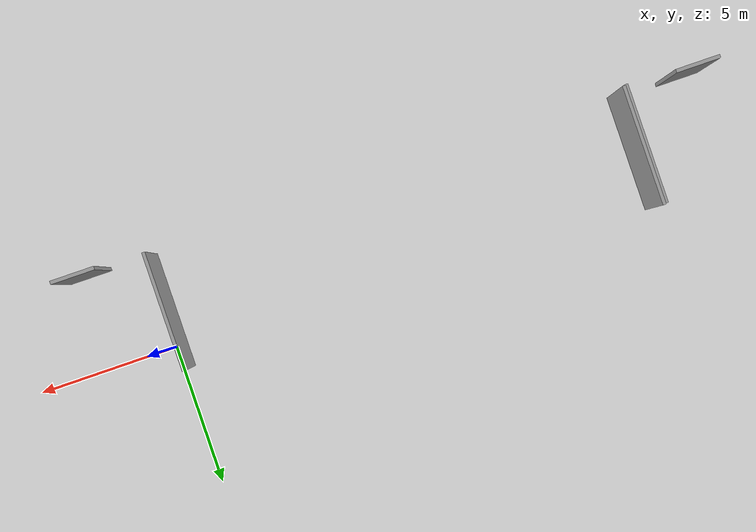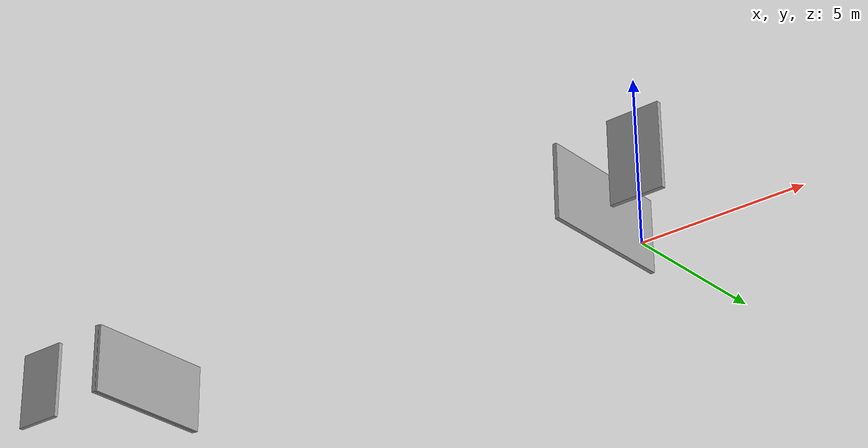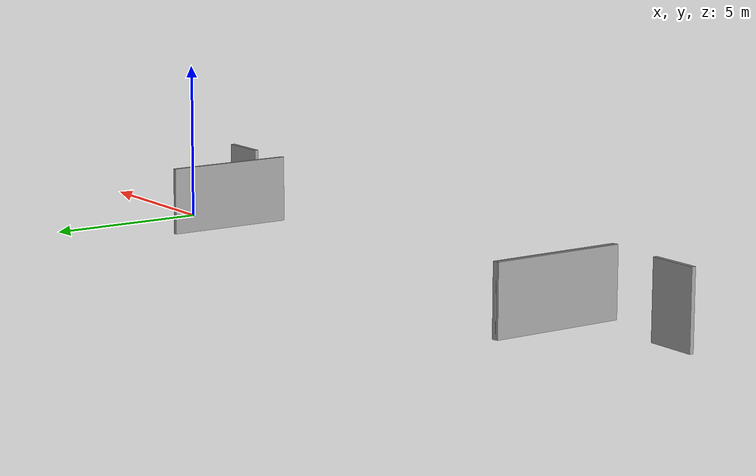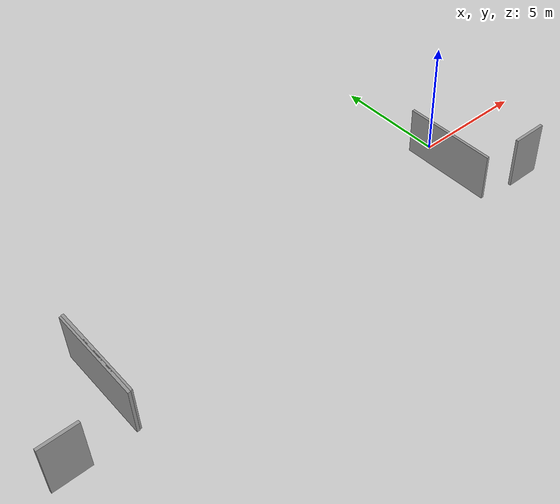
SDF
<?xml version='1.0'?>
<sdf version='1.7'>
  <model name='test_wall'>
    <link name='link'>
      <inertial>
        <mass>1.10406</mass>
        <inertia>
          <ixx>2.08016</ixx>
          <ixy>0</ixy>
          <ixz>0</ixz>
          <iyy>0.437792</iyy>
          <iyz>0</iyz>
          <izz>1.64501</izz>
        </inertia>
        <pose>0 0 0 0 -0 0</pose>
      </inertial>
      <self_collide>0</self_collide>
      <enable_wind>0</enable_wind>
      <kinematic>0</kinematic>
      <pose>-0.273242 -1.25956 0.601296 0 -0 0</pose>
      <visual name='visual'>
        <geometry>
          <box>
            <size>0.119706 4.22673 2.17808</size>
          </box>
        </geometry>
        <material>
          <script>
            <name>Gazebo/Grey</name>
            <uri>file://media/materials/scripts/gazebo.material</uri>
          </script>
          <shader type='pixel'/>
        </material>
        <pose>0 0 0 0 -0 0</pose>
        <transparency>0</transparency>
        <cast_shadows>1</cast_shadows>
      </visual>
      <collision name='collision'>
        <laser_retro>0</laser_retro>
        <max_contacts>10</max_contacts>
        <pose>0 0 0 0 -0 0</pose>
        <geometry>
          <box>
            <size>0.119706 4.22673 2.17808</size>
          </box>
        </geometry>
        <surface>
          <friction>
            <ode>
              <mu>1</mu>
              <mu2>1</mu2>
              <fdir1>0 0 0</fdir1>
              <slip1>0</slip1>
              <slip2>0</slip2>
            </ode>
            <torsional>
              <coefficient>1</coefficient>
              <patch_radius>0</patch_radius>
              <surface_radius>0</surface_radius>
              <use_patch_radius>1</use_patch_radius>
              <ode>
                <slip>0</slip>
              </ode>
            </torsional>
          </friction>
          <bounce>
            <restitution_coefficient>0</restitution_coefficient>
            <threshold>1e+06</threshold>
          </bounce>
          <contact>
            <collide_without_contact>0</collide_without_contact>
            <collide_without_contact_bitmask>1</collide_without_contact_bitmask>
            <collide_bitmask>1</collide_bitmask>
            <ode>
              <soft_cfm>0</soft_cfm>
              <soft_erp>0.2</soft_erp>
              <kp>1e+13</kp>
              <kd>1</kd>
              <max_vel>0.01</max_vel>
              <min_depth>0</min_depth>
            </ode>
            <bullet>
              <split_impulse>1</split_impulse>
              <split_impulse_penetration_threshold>-0.01</split_impulse_penetration_threshold>
              <soft_cfm>0</soft_cfm>
              <soft_erp>0.2</soft_erp>
              <kp>1e+13</kp>
              <kd>1</kd>
            </bullet>
          </contact>
        </surface>
      </collision>
    </link>
    <link name='link_0'>
      <inertial>
        <mass>0.491197</mass>
        <inertia>
          <ixx>0.240977</ixx>
          <ixy>0</ixy>
          <ixz>0</ixz>
          <iyy>0.340928</iyy>
          <iyz>0</iyz>
          <izz>0.101317</izz>
        </inertia>
        <pose>0 0 0 0 -0 0</pose>
      </inertial>
      <pose>2.24505 -3.41439 0.448775 -1e-05 0 0</pose>
      <visual name='visual'>
        <pose>0 0 0 0 -0 0</pose>
        <geometry>
          <box>
            <size>1.56796 0.129184 2.4229</size>
          </box>
        </geometry>
        <material>
          <lighting>1</lighting>
          <script>
            <uri>file://media/materials/scripts/gazebo.material</uri>
            <name>Gazebo/Grey</name>
          </script>
          <shader type='pixel'/>
        </material>
        <transparency>0</transparency>
        <cast_shadows>1</cast_shadows>
      </visual>
      <collision name='collision'>
        <laser_retro>0</laser_retro>
        <max_contacts>10</max_contacts>
        <pose>0 0 0 0 -0 0</pose>
        <geometry>
          <box>
            <size>1.56796 0.129184 2.4229</size>
          </box>
        </geometry>
        <surface>
          <friction>
            <ode>
              <mu>1</mu>
              <mu2>1</mu2>
              <fdir1>0 0 0</fdir1>
              <slip1>0</slip1>
              <slip2>0</slip2>
            </ode>
            <torsional>
              <coefficient>1</coefficient>
              <patch_radius>0</patch_radius>
              <surface_radius>0</surface_radius>
              <use_patch_radius>1</use_patch_radius>
              <ode>
                <slip>0</slip>
              </ode>
            </torsional>
          </friction>
          <bounce>
            <restitution_coefficient>0</restitution_coefficient>
            <threshold>1e+06</threshold>
          </bounce>
          <contact>
            <collide_without_contact>0</collide_without_contact>
            <collide_without_contact_bitmask>1</collide_without_contact_bitmask>
            <collide_bitmask>1</collide_bitmask>
            <ode>
              <soft_cfm>0</soft_cfm>
              <soft_erp>0.2</soft_erp>
              <kp>1e+13</kp>
              <kd>1</kd>
              <max_vel>0.01</max_vel>
              <min_depth>0</min_depth>
            </ode>
            <bullet>
              <split_impulse>1</split_impulse>
              <split_impulse_penetration_threshold>-0.01</split_impulse_penetration_threshold>
              <soft_cfm>0</soft_cfm>
              <soft_erp>0.2</soft_erp>
              <kp>1e+13</kp>
              <kd>1</kd>
            </bullet>
          </contact>
        </surface>
      </collision>
    </link>
    <link name='link_0_clone'>
      <inertial>
        <mass>0.491197</mass>
        <inertia>
          <ixx>0.240977</ixx>
          <ixy>0</ixy>
          <ixz>0</ixz>
          <iyy>0.340928</iyy>
          <iyz>0</iyz>
          <izz>0.101317</izz>
        </inertia>
        <pose>0 0 0 0 -0 0</pose>
      </inertial>
      <pose>-20.0042 -3.326 0.448808 -2e-05 0 0</pose>
      <visual name='visual'>
        <pose>0 0 0 0 -0 0</pose>
        <geometry>
          <box>
            <size>1.56796 0.129184 2.4229</size>
          </box>
        </geometry>
        <material>
          <lighting>1</lighting>
          <script>
            <uri>file://media/materials/scripts/gazebo.material</uri>
            <name>Gazebo/Grey</name>
          </script>
          <shader type='pixel'/>
        </material>
        <transparency>0</transparency>
        <cast_shadows>1</cast_shadows>
      </visual>
      <collision name='collision'>
        <laser_retro>0</laser_retro>
        <max_contacts>10</max_contacts>
        <pose>0 0 0 0 -0 0</pose>
        <geometry>
          <box>
            <size>1.56796 0.129184 2.4229</size>
          </box>
        </geometry>
        <surface>
          <friction>
            <ode>
              <mu>1</mu>
              <mu2>1</mu2>
              <fdir1>0 0 0</fdir1>
              <slip1>0</slip1>
              <slip2>0</slip2>
            </ode>
            <torsional>
              <coefficient>1</coefficient>
              <patch_radius>0</patch_radius>
              <surface_radius>0</surface_radius>
              <use_patch_radius>1</use_patch_radius>
              <ode>
                <slip>0</slip>
              </ode>
            </torsional>
          </friction>
          <bounce>
            <restitution_coefficient>0</restitution_coefficient>
            <threshold>1e+06</threshold>
          </bounce>
          <contact>
            <collide_without_contact>0</collide_without_contact>
            <collide_without_contact_bitmask>1</collide_without_contact_bitmask>
            <collide_bitmask>1</collide_bitmask>
            <ode>
              <soft_cfm>0</soft_cfm>
              <soft_erp>0.2</soft_erp>
              <kp>1e+13</kp>
              <kd>1</kd>
              <max_vel>0.01</max_vel>
              <min_depth>0</min_depth>
            </ode>
            <bullet>
              <split_impulse>1</split_impulse>
              <split_impulse_penetration_threshold>-0.01</split_impulse_penetration_threshold>
              <soft_cfm>0</soft_cfm>
              <soft_erp>0.2</soft_erp>
              <kp>1e+13</kp>
              <kd>1</kd>
            </bullet>
          </contact>
        </surface>
      </collision>
    </link>
    <link name='link_clone'>
      <inertial>
        <mass>1.10406</mass>
        <inertia>
          <ixx>2.08016</ixx>
          <ixy>0</ixy>
          <ixz>0</ixz>
          <iyy>0.437792</iyy>
          <iyz>0</iyz>
          <izz>1.64501</izz>
        </inertia>
        <pose>0 0 0 0 -0 0</pose>
      </inertial>
      <self_collide>0</self_collide>
      <enable_wind>0</enable_wind>
      <kinematic>0</kinematic>
      <pose>-17.4755 -1.34206 0.601309 -1e-05 0 0</pose>
      <visual name='visual'>
        <geometry>
          <box>
            <size>0.119706 4.22673 2.17808</size>
          </box>
        </geometry>
        <material>
          <script>
            <name>Gazebo/Grey</name>
            <uri>file://media/materials/scripts/gazebo.material</uri>
          </script>
          <shader type='pixel'/>
        </material>
        <pose>0 0 0 0 -0 0</pose>
        <transparency>0</transparency>
        <cast_shadows>1</cast_shadows>
      </visual>
      <collision name='collision'>
        <laser_retro>0</laser_retro>
        <max_contacts>10</max_contacts>
        <pose>0 0 0 0 -0 0</pose>
        <geometry>
          <box>
            <size>0.119706 4.22673 2.17808</size>
          </box>
        </geometry>
        <surface>
          <friction>
            <ode>
              <mu>1</mu>
              <mu2>1</mu2>
              <fdir1>0 0 0</fdir1>
              <slip1>0</slip1>
              <slip2>0</slip2>
            </ode>
            <torsional>
              <coefficient>1</coefficient>
              <patch_radius>0</patch_radius>
              <surface_radius>0</surface_radius>
              <use_patch_radius>1</use_patch_radius>
              <ode>
                <slip>0</slip>
              </ode>
            </torsional>
          </friction>
          <bounce>
            <restitution_coefficient>0</restitution_coefficient>
            <threshold>1e+06</threshold>
          </bounce>
          <contact>
            <collide_without_contact>0</collide_without_contact>
            <collide_without_contact_bitmask>1</collide_without_contact_bitmask>
            <collide_bitmask>1</collide_bitmask>
            <ode>
              <soft_cfm>0</soft_cfm>
              <soft_erp>0.2</soft_erp>
              <kp>1e+13</kp>
              <kd>1</kd>
              <max_vel>0.01</max_vel>
              <min_depth>0</min_depth>
            </ode>
            <bullet>
              <split_impulse>1</split_impulse>
              <split_impulse_penetration_threshold>-0.01</split_impulse_penetration_threshold>
              <soft_cfm>0</soft_cfm>
              <soft_erp>0.2</soft_erp>
              <kp>1e+13</kp>
              <kd>1</kd>
            </bullet>
          </contact>
        </surface>
      </collision>
    </link>
    <link name='link_clone_0'>
      <inertial>
        <mass>1.10406</mass>
        <inertia>
          <ixx>2.08016</ixx>
          <ixy>0</ixy>
          <ixz>0</ixz>
          <iyy>0.437792</iyy>
          <iyz>0</iyz>
          <izz>1.64501</izz>
        </inertia>
        <pose>0 0 0 0 -0 0</pose>
      </inertial>
      <self_collide>0</self_collide>
      <enable_wind>0</enable_wind>
      <kinematic>0</kinematic>
      <pose>-17.3886 -1.31344 0.601309 -1e-05 0 0</pose>
      <visual name='visual'>
        <geometry>
          <box>
            <size>0.119706 4.22673 2.17808</size>
          </box>
        </geometry>
        <material>
          <script>
            <name>Gazebo/Grey</name>
            <uri>file://media/materials/scripts/gazebo.material</uri>
          </script>
          <shader type='pixel'/>
        </material>
        <pose>0 0 0 0 -0 0</pose>
        <transparency>0</transparency>
        <cast_shadows>1</cast_shadows>
      </visual>
      <collision name='collision'>
        <laser_retro>0</laser_retro>
        <max_contacts>10</max_contacts>
        <pose>0 0 0 0 -0 0</pose>
        <geometry>
          <box>
            <size>0.119706 4.22673 2.17808</size>
          </box>
        </geometry>
        <surface>
          <friction>
            <ode>
              <mu>1</mu>
              <mu2>1</mu2>
              <fdir1>0 0 0</fdir1>
              <slip1>0</slip1>
              <slip2>0</slip2>
            </ode>
            <torsional>
              <coefficient>1</coefficient>
              <patch_radius>0</patch_radius>
              <surface_radius>0</surface_radius>
              <use_patch_radius>1</use_patch_radius>
              <ode>
                <slip>0</slip>
              </ode>
            </torsional>
          </friction>
          <bounce>
            <restitution_coefficient>0</restitution_coefficient>
            <threshold>1e+06</threshold>
          </bounce>
          <contact>
            <collide_without_contact>0</collide_without_contact>
            <collide_without_contact_bitmask>1</collide_without_contact_bitmask>
            <collide_bitmask>1</collide_bitmask>
            <ode>
              <soft_cfm>0</soft_cfm>
              <soft_erp>0.2</soft_erp>
              <kp>1e+13</kp>
              <kd>1</kd>
              <max_vel>0.01</max_vel>
              <min_depth>0</min_depth>
            </ode>
            <bullet>
              <split_impulse>1</split_impulse>
              <split_impulse_penetration_threshold>-0.01</split_impulse_penetration_threshold>
              <soft_cfm>0</soft_cfm>
              <soft_erp>0.2</soft_erp>
              <kp>1e+13</kp>
              <kd>1</kd>
            </bullet>
          </contact>
        </surface>
      </collision>
    </link>
    <static>0</static>
    <allow_auto_disable>1</allow_auto_disable>
  </model>
</sdf>
